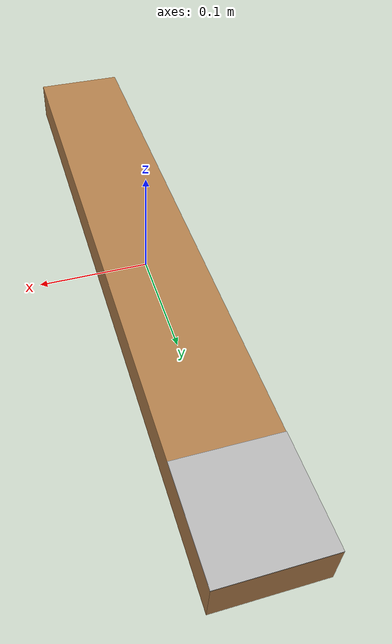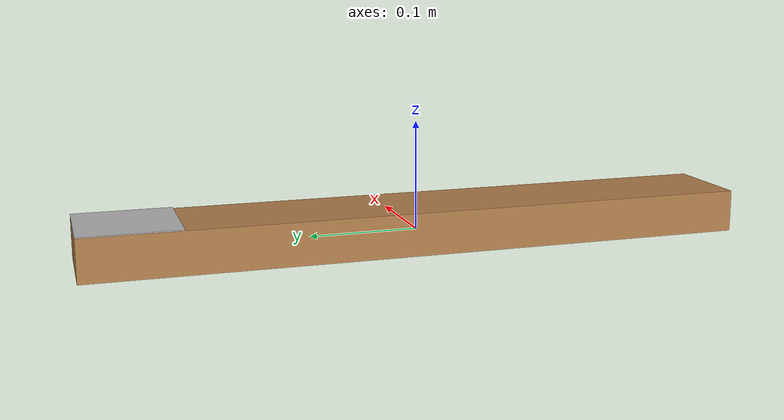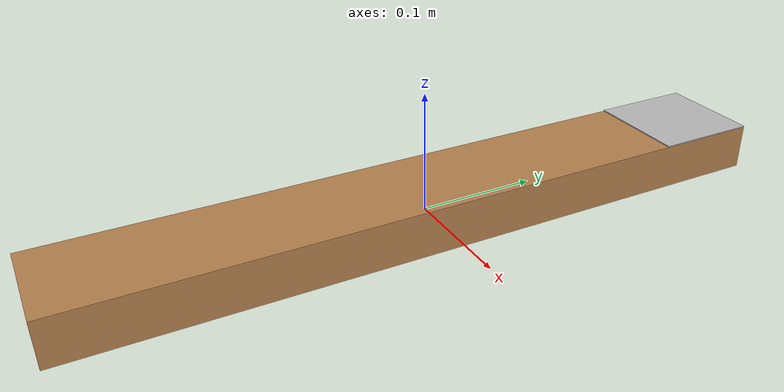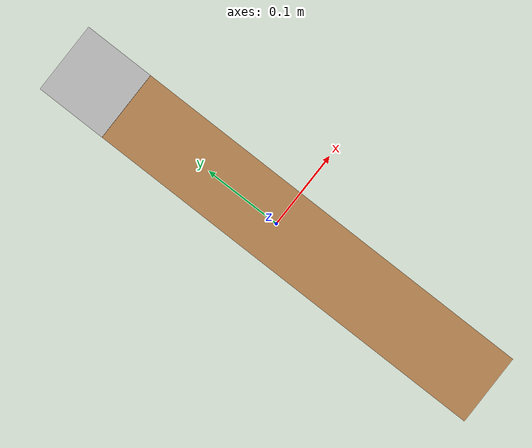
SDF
<?xml version="1.0" ?>

<sdf version="1.5">
  <model name="timber_board">
    <link name="base">

      <pose>0 0 0.00523 0 0 0</pose>
      <inertial>
        <mass>0.2765</mass>
        <inertia>
          <ixx>0.0025148009472833336</ixx>
          <ixy>0</ixy>
          <ixz>0</ixz>
          <iyy>0.00024037001228333334</iyy>
          <iyz>0</iyz>
          <izz>0.002750128908333333</izz>
        </inertia>
      </inertial>

      <collision name="collision">
        <geometry>
          <box>
            <size>0.089 0.609 0.039</size>
          </box>
        </geometry>
        <surface>
          <contact>
            <!-- Red Pine coefficients for longitudinal axis of the wood
                 according to:
                 http://www.fpl.fs.fed.us/documnts/fplgtr/fplgtr113/ch04.pdf -->
            <poissons_ratio>0.347</poissons_ratio>
            <elastic_modulus>8.8e+09</elastic_modulus>
            <ode>
              <kp>100000</kp>
              <kd>100</kd>
              <max_vel>100.0</max_vel>
              <min_depth>0.001</min_depth>
            </ode>
          </contact>
          <friction>
            <torsional>
              <coefficient>1.0</coefficient>
              <use_patch_radius>0</use_patch_radius>
              <surface_radius>0.01</surface_radius>
            </torsional>
          </friction>
        </surface>
      </collision>

      <visual name="visual">
        <geometry>
          <box>
            <size>0.089 0.609 0.039</size>
          </box>
        </geometry>
        <material>
          <script>
            <uri>file://media/materials/scripts/gazebo.material</uri>
            <name>Gazebo/Wood</name>
          </script>
        </material>
      </visual>

      <visual name='apriltag_Visual'>
        <pose>0.0 0.26 0.02  0 0 0</pose>
        <geometry>
          <box>
          <size>0.089 0.089 0.001</size>
          </box>
        </geometry>
        <material>
          <script>
            <uri>model://Apriltag36_11_00000/materials/scripts</uri>
            <uri>model://Apriltag36_11_00000/materials/textures</uri>
            <name>Apriltag36_11_00000</name>
          </script>
        </material>
      </visual>

    </link>

  </model>
</sdf>
